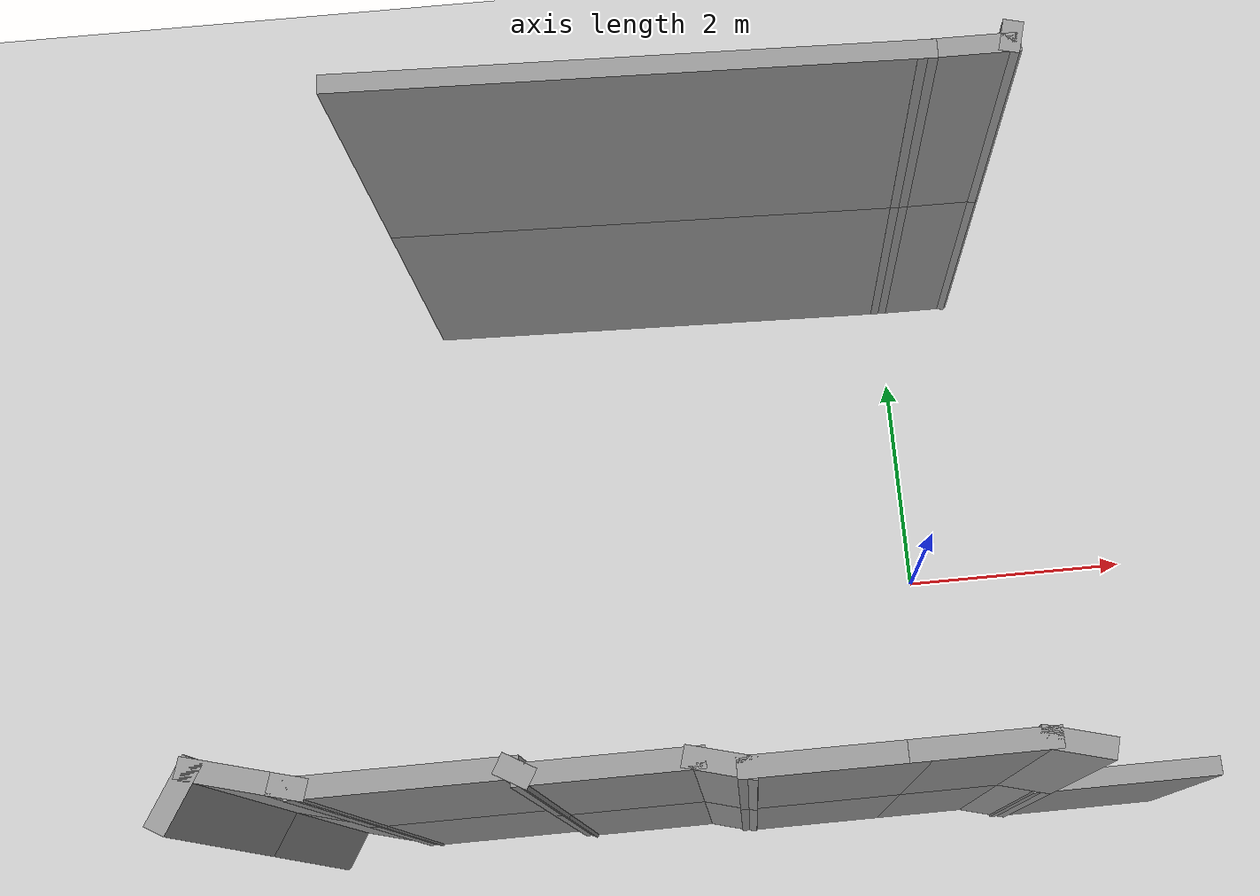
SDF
<sdf version="1.7">
 <world name="default">
  <model name="ground_plane">
   <static>1</static>
   <link name="link">
    <collision name="collision">
     <geometry><plane><normal>0 0 1</normal><size>100 100</size></plane></geometry>
     <surface>
      <contact><collide_bitmask>65535</collide_bitmask></contact>
      <friction><ode><mu>100</mu><mu2>50</mu2></ode></friction>
     </surface>
    </collision>
    <visual name="visual">
     <cast_shadows>0</cast_shadows>
     <geometry><plane><normal>0 0 1</normal><size>100 100</size></plane></geometry>
     <material>
      <script><uri>file://media/materials/scripts/gazebo.material</uri><name>Gazebo/Grey</name></script>
     </material>
    </visual>
   </link>
  </model>
  <model name="EnvDC01">
   <link name="Wall_107">
    <pose>-5.93616 9.1413 0 0 0 -1.8326</pose>
    <visual name="Wall_107_Visual">
     <pose>0 0 1.25 0 -0 0</pose>
     <geometry><box><size>0.25 0.15 2.5</size></box></geometry>
     <material>
      <script><uri>file://media/materials/scripts/gazebo.material</uri><name>Gazebo/Grey</name></script>
      <ambient>1 1 1 1</ambient>
      <shader type="pixel"/>
     </material>
     <meta><layer>0</layer></meta>
    </visual>
    <collision name="Wall_107_Collision">
     <pose>0 0 1.25 0 -0 0</pose>
     <geometry><box><size>0.25 0.15 2.5</size></box></geometry>
     <surface>
      <friction>
       <ode><mu>1</mu><mu2>1</mu2><fdir1>0 0 0</fdir1><slip1>0</slip1><slip2>0</slip2></ode>
       <torsional>
        <coefficient>1</coefficient>
        <patch_radius>0</patch_radius>
        <surface_radius>0</surface_radius>
        <use_patch_radius>1</use_patch_radius>
        <ode><slip>0</slip></ode>
       </torsional>
      </friction>
      <bounce><restitution_coefficient>0</restitution_coefficient><threshold>1e+06</threshold></bounce>
      <contact>
       <collide_without_contact>0</collide_without_contact>
       <collide_without_contact_bitmask>1</collide_without_contact_bitmask>
       <collide_bitmask>1</collide_bitmask>
       <ode>
        <soft_cfm>0</soft_cfm>
        <soft_erp>0.2</soft_erp>
        <kp>1e+13</kp>
        <kd>1</kd>
        <max_vel>0.01</max_vel>
        <min_depth>0</min_depth>
       </ode>
       <bullet>
        <split_impulse>1</split_impulse>
        <split_impulse_penetration_threshold>-0.01</split_impulse_penetration_threshold>
        <soft_cfm>0</soft_cfm>
        <soft_erp>0.2</soft_erp>
        <kp>1e+13</kp>
        <kd>1</kd>
       </bullet>
      </contact>
     </surface>
    </collision>
   </link>
   <link name="Wall_108">
    <pose>-6.24911 9.09509 0 0 -0 3.13464</pose>
    <visual name="Wall_108_Visual">
     <pose>0 0 1.25 0 -0 0</pose>
     <geometry><box><size>0.75 0.15 2.5</size></box></geometry>
     <material>
      <script><uri>file://media/materials/scripts/gazebo.material</uri><name>Gazebo/Grey</name></script>
      <ambient>1 1 1 1</ambient>
      <shader type="pixel"/>
     </material>
     <meta><layer>0</layer></meta>
    </visual>
    <collision name="Wall_108_Collision">
     <pose>0 0 1.25 0 -0 0</pose>
     <geometry><box><size>0.75 0.15 2.5</size></box></geometry>
     <surface>
      <friction>
       <ode><mu>1</mu><mu2>1</mu2><fdir1>0 0 0</fdir1><slip1>0</slip1><slip2>0</slip2></ode>
       <torsional>
        <coefficient>1</coefficient>
        <patch_radius>0</patch_radius>
        <surface_radius>0</surface_radius>
        <use_patch_radius>1</use_patch_radius>
        <ode><slip>0</slip></ode>
       </torsional>
      </friction>
      <bounce><restitution_coefficient>0</restitution_coefficient><threshold>1e+06</threshold></bounce>
      <contact>
       <collide_without_contact>0</collide_without_contact>
       <collide_without_contact_bitmask>1</collide_without_contact_bitmask>
       <collide_bitmask>1</collide_bitmask>
       <ode>
        <soft_cfm>0</soft_cfm>
        <soft_erp>0.2</soft_erp>
        <kp>1e+13</kp>
        <kd>1</kd>
        <max_vel>0.01</max_vel>
        <min_depth>0</min_depth>
       </ode>
       <bullet>
        <split_impulse>1</split_impulse>
        <split_impulse_penetration_threshold>-0.01</split_impulse_penetration_threshold>
        <soft_cfm>0</soft_cfm>
        <soft_erp>0.2</soft_erp>
        <kp>1e+13</kp>
        <kd>1</kd>
       </bullet>
      </contact>
     </surface>
    </collision>
   </link>
   <link name="Wall_111">
    <pose>-8.68398 9.16284 0 0 -0 3.11085</pose>
    <visual name="Wall_111_Visual">
     <pose>0 0 1.25 0 -0 0</pose>
     <geometry><box><size>4.42177 0.15 2.5</size></box></geometry>
     <material>
      <script><uri>file://media/materials/scripts/gazebo.material</uri><name>Gazebo/Grey</name></script>
      <ambient>1 1 1 1</ambient>
      <shader type="pixel"/>
     </material>
     <meta><layer>0</layer></meta>
    </visual>
    <collision name="Wall_111_Collision">
     <pose>0 0 1.25 0 -0 0</pose>
     <geometry><box><size>4.42177 0.15 2.5</size></box></geometry>
     <surface>
      <friction>
       <ode><mu>1</mu><mu2>1</mu2><fdir1>0 0 0</fdir1><slip1>0</slip1><slip2>0</slip2></ode>
       <torsional>
        <coefficient>1</coefficient>
        <patch_radius>0</patch_radius>
        <surface_radius>0</surface_radius>
        <use_patch_radius>1</use_patch_radius>
        <ode><slip>0</slip></ode>
       </torsional>
      </friction>
      <bounce><restitution_coefficient>0</restitution_coefficient><threshold>1e+06</threshold></bounce>
      <contact>
       <collide_without_contact>0</collide_without_contact>
       <collide_without_contact_bitmask>1</collide_without_contact_bitmask>
       <collide_bitmask>1</collide_bitmask>
       <ode>
        <soft_cfm>0</soft_cfm>
        <soft_erp>0.2</soft_erp>
        <kp>1e+13</kp>
        <kd>1</kd>
        <max_vel>0.01</max_vel>
        <min_depth>0</min_depth>
       </ode>
       <bullet>
        <split_impulse>1</split_impulse>
        <split_impulse_penetration_threshold>-0.01</split_impulse_penetration_threshold>
        <soft_cfm>0</soft_cfm>
        <soft_erp>0.2</soft_erp>
        <kp>1e+13</kp>
        <kd>1</kd>
       </bullet>
      </contact>
     </surface>
    </collision>
   </link>
   <link name="Wall_167">
    <pose>-5.33682 4.06947 0 0 -0 3.14159</pose>
    <visual name="Wall_167_Visual">
     <pose>0 0 1.25 0 -0 0</pose>
     <geometry><box><size>1.5 0.15 2.5</size></box></geometry>
     <material>
      <script><uri>file://media/materials/scripts/gazebo.material</uri><name>Gazebo/Grey</name></script>
      <ambient>1 1 1 1</ambient>
      <shader type="pixel"/>
     </material>
     <meta><layer>0</layer></meta>
    </visual>
    <collision name="Wall_167_Collision">
     <pose>0 0 1.25 0 -0 0</pose>
     <geometry><box><size>1.5 0.15 2.5</size></box></geometry>
     <surface>
      <friction>
       <ode><mu>1</mu><mu2>1</mu2><fdir1>0 0 0</fdir1><slip1>0</slip1><slip2>0</slip2></ode>
       <torsional>
        <coefficient>1</coefficient>
        <patch_radius>0</patch_radius>
        <surface_radius>0</surface_radius>
        <use_patch_radius>1</use_patch_radius>
        <ode><slip>0</slip></ode>
       </torsional>
      </friction>
      <bounce><restitution_coefficient>0</restitution_coefficient><threshold>1e+06</threshold></bounce>
      <contact>
       <collide_without_contact>0</collide_without_contact>
       <collide_without_contact_bitmask>1</collide_without_contact_bitmask>
       <collide_bitmask>1</collide_bitmask>
       <ode>
        <soft_cfm>0</soft_cfm>
        <soft_erp>0.2</soft_erp>
        <kp>1e+13</kp>
        <kd>1</kd>
        <max_vel>0.01</max_vel>
        <min_depth>0</min_depth>
       </ode>
       <bullet>
        <split_impulse>1</split_impulse>
        <split_impulse_penetration_threshold>-0.01</split_impulse_penetration_threshold>
        <soft_cfm>0</soft_cfm>
        <soft_erp>0.2</soft_erp>
        <kp>1e+13</kp>
        <kd>1</kd>
       </bullet>
      </contact>
     </surface>
    </collision>
   </link>
   <link name="Wall_168">
    <pose>-6.18085 4.11477 0 0 -0 2.87979</pose>
    <visual name="Wall_168_Visual">
     <pose>0 0 1.25 0 -0 0</pose>
     <geometry><box><size>0.5 0.15 2.5</size></box></geometry>
     <material>
      <script><uri>file://media/materials/scripts/gazebo.material</uri><name>Gazebo/Grey</name></script>
      <ambient>1 1 1 1</ambient>
      <shader type="pixel"/>
     </material>
     <meta><layer>0</layer></meta>
    </visual>
    <collision name="Wall_168_Collision">
     <pose>0 0 1.25 0 -0 0</pose>
     <geometry><box><size>0.5 0.15 2.5</size></box></geometry>
     <surface>
      <friction>
       <ode><mu>1</mu><mu2>1</mu2><fdir1>0 0 0</fdir1><slip1>0</slip1><slip2>0</slip2></ode>
       <torsional>
        <coefficient>1</coefficient>
        <patch_radius>0</patch_radius>
        <surface_radius>0</surface_radius>
        <use_patch_radius>1</use_patch_radius>
        <ode><slip>0</slip></ode>
       </torsional>
      </friction>
      <bounce><restitution_coefficient>0</restitution_coefficient><threshold>1e+06</threshold></bounce>
      <contact>
       <collide_without_contact>0</collide_without_contact>
       <collide_without_contact_bitmask>1</collide_without_contact_bitmask>
       <collide_bitmask>1</collide_bitmask>
       <ode>
        <soft_cfm>0</soft_cfm>
        <soft_erp>0.2</soft_erp>
        <kp>1e+13</kp>
        <kd>1</kd>
        <max_vel>0.01</max_vel>
        <min_depth>0</min_depth>
       </ode>
       <bullet>
        <split_impulse>1</split_impulse>
        <split_impulse_penetration_threshold>-0.01</split_impulse_penetration_threshold>
        <soft_cfm>0</soft_cfm>
        <soft_erp>0.2</soft_erp>
        <kp>1e+13</kp>
        <kd>1</kd>
       </bullet>
      </contact>
     </surface>
    </collision>
   </link>
   <link name="Wall_169">
    <pose>-6.77489 4.16006 0 0 -0 3.14159</pose>
    <visual name="Wall_169_Visual">
     <pose>0 0 1.25 0 -0 0</pose>
     <geometry><box><size>1 0.15 2.5</size></box></geometry>
     <material>
      <script><uri>file://media/materials/scripts/gazebo.material</uri><name>Gazebo/Grey</name></script>
      <ambient>1 1 1 1</ambient>
      <shader type="pixel"/>
     </material>
     <meta><layer>0</layer></meta>
    </visual>
    <collision name="Wall_169_Collision">
     <pose>0 0 1.25 0 -0 0</pose>
     <geometry><box><size>1 0.15 2.5</size></box></geometry>
     <surface>
      <friction>
       <ode><mu>1</mu><mu2>1</mu2><fdir1>0 0 0</fdir1><slip1>0</slip1><slip2>0</slip2></ode>
       <torsional>
        <coefficient>1</coefficient>
        <patch_radius>0</patch_radius>
        <surface_radius>0</surface_radius>
        <use_patch_radius>1</use_patch_radius>
        <ode><slip>0</slip></ode>
       </torsional>
      </friction>
      <bounce><restitution_coefficient>0</restitution_coefficient><threshold>1e+06</threshold></bounce>
      <contact>
       <collide_without_contact>0</collide_without_contact>
       <collide_without_contact_bitmask>1</collide_without_contact_bitmask>
       <collide_bitmask>1</collide_bitmask>
       <ode>
        <soft_cfm>0</soft_cfm>
        <soft_erp>0.2</soft_erp>
        <kp>1e+13</kp>
        <kd>1</kd>
        <max_vel>0.01</max_vel>
        <min_depth>0</min_depth>
       </ode>
       <bullet>
        <split_impulse>1</split_impulse>
        <split_impulse_penetration_threshold>-0.01</split_impulse_penetration_threshold>
        <soft_cfm>0</soft_cfm>
        <soft_erp>0.2</soft_erp>
        <kp>1e+13</kp>
        <kd>1</kd>
       </bullet>
      </contact>
     </surface>
    </collision>
   </link>
   <link name="Wall_170">
    <pose>-7.74989 4.16006 0 0 -0 3.14159</pose>
    <visual name="Wall_170_Visual">
     <pose>0 0 1.25 0 -0 0</pose>
     <geometry><box><size>1.25 0.15 2.5</size></box></geometry>
     <material>
      <script><uri>file://media/materials/scripts/gazebo.material</uri><name>Gazebo/Grey</name></script>
      <ambient>1 1 1 1</ambient>
      <shader type="pixel"/>
     </material>
     <meta><layer>0</layer></meta>
    </visual>
    <collision name="Wall_170_Collision">
     <pose>0 0 1.25 0 -0 0</pose>
     <geometry><box><size>1.25 0.15 2.5</size></box></geometry>
     <surface>
      <friction>
       <ode><mu>1</mu><mu2>1</mu2><fdir1>0 0 0</fdir1><slip1>0</slip1><slip2>0</slip2></ode>
       <torsional>
        <coefficient>1</coefficient>
        <patch_radius>0</patch_radius>
        <surface_radius>0</surface_radius>
        <use_patch_radius>1</use_patch_radius>
        <ode><slip>0</slip></ode>
       </torsional>
      </friction>
      <bounce><restitution_coefficient>0</restitution_coefficient><threshold>1e+06</threshold></bounce>
      <contact>
       <collide_without_contact>0</collide_without_contact>
       <collide_without_contact_bitmask>1</collide_without_contact_bitmask>
       <collide_bitmask>1</collide_bitmask>
       <ode>
        <soft_cfm>0</soft_cfm>
        <soft_erp>0.2</soft_erp>
        <kp>1e+13</kp>
        <kd>1</kd>
        <max_vel>0.01</max_vel>
        <min_depth>0</min_depth>
       </ode>
       <bullet>
        <split_impulse>1</split_impulse>
        <split_impulse_penetration_threshold>-0.01</split_impulse_penetration_threshold>
        <soft_cfm>0</soft_cfm>
        <soft_erp>0.2</soft_erp>
        <kp>1e+13</kp>
        <kd>1</kd>
       </bullet>
      </contact>
     </surface>
    </collision>
   </link>
   <link name="Wall_172">
    <pose>-8.46893 4.20535 0 0 -0 2.87979</pose>
    <visual name="Wall_172_Visual">
     <pose>0 0 1.25 0 -0 0</pose>
     <geometry><box><size>0.5 0.15 2.5</size></box></geometry>
     <material>
      <script><uri>file://media/materials/scripts/gazebo.material</uri><name>Gazebo/Grey</name></script>
      <ambient>1 1 1 1</ambient>
      <shader type="pixel"/>
     </material>
     <meta><layer>0</layer></meta>
    </visual>
    <collision name="Wall_172_Collision">
     <pose>0 0 1.25 0 -0 0</pose>
     <geometry><box><size>0.5 0.15 2.5</size></box></geometry>
     <surface>
      <friction>
       <ode><mu>1</mu><mu2>1</mu2><fdir1>0 0 0</fdir1><slip1>0</slip1><slip2>0</slip2></ode>
       <torsional>
        <coefficient>1</coefficient>
        <patch_radius>0</patch_radius>
        <surface_radius>0</surface_radius>
        <use_patch_radius>1</use_patch_radius>
        <ode><slip>0</slip></ode>
       </torsional>
      </friction>
      <bounce><restitution_coefficient>0</restitution_coefficient><threshold>1e+06</threshold></bounce>
      <contact>
       <collide_without_contact>0</collide_without_contact>
       <collide_without_contact_bitmask>1</collide_without_contact_bitmask>
       <collide_bitmask>1</collide_bitmask>
       <ode>
        <soft_cfm>0</soft_cfm>
        <soft_erp>0.2</soft_erp>
        <kp>1e+13</kp>
        <kd>1</kd>
        <max_vel>0.01</max_vel>
        <min_depth>0</min_depth>
       </ode>
       <bullet>
        <split_impulse>1</split_impulse>
        <split_impulse_penetration_threshold>-0.01</split_impulse_penetration_threshold>
        <soft_cfm>0</soft_cfm>
        <soft_erp>0.2</soft_erp>
        <kp>1e+13</kp>
        <kd>1</kd>
       </bullet>
      </contact>
     </surface>
    </collision>
   </link>
   <link name="Wall_173">
    <pose>-9.18796 4.25064 0 0 -0 3.14159</pose>
    <visual name="Wall_173_Visual">
     <pose>0 0 1.25 0 -0 0</pose>
     <geometry><box><size>1.25 0.15 2.5</size></box></geometry>
     <material>
      <script><uri>file://media/materials/scripts/gazebo.material</uri><name>Gazebo/Grey</name></script>
      <ambient>1 1 1 1</ambient>
      <shader type="pixel"/>
     </material>
     <meta><layer>0</layer></meta>
    </visual>
    <collision name="Wall_173_Collision">
     <pose>0 0 1.25 0 -0 0</pose>
     <geometry><box><size>1.25 0.15 2.5</size></box></geometry>
     <surface>
      <friction>
       <ode><mu>1</mu><mu2>1</mu2><fdir1>0 0 0</fdir1><slip1>0</slip1><slip2>0</slip2></ode>
       <torsional>
        <coefficient>1</coefficient>
        <patch_radius>0</patch_radius>
        <surface_radius>0</surface_radius>
        <use_patch_radius>1</use_patch_radius>
        <ode><slip>0</slip></ode>
       </torsional>
      </friction>
      <bounce><restitution_coefficient>0</restitution_coefficient><threshold>1e+06</threshold></bounce>
      <contact>
       <collide_without_contact>0</collide_without_contact>
       <collide_without_contact_bitmask>1</collide_without_contact_bitmask>
       <collide_bitmask>1</collide_bitmask>
       <ode>
        <soft_cfm>0</soft_cfm>
        <soft_erp>0.2</soft_erp>
        <kp>1e+13</kp>
        <kd>1</kd>
        <max_vel>0.01</max_vel>
        <min_depth>0</min_depth>
       </ode>
       <bullet>
        <split_impulse>1</split_impulse>
        <split_impulse_penetration_threshold>-0.01</split_impulse_penetration_threshold>
        <soft_cfm>0</soft_cfm>
        <soft_erp>0.2</soft_erp>
        <kp>1e+13</kp>
        <kd>1</kd>
       </bullet>
      </contact>
     </surface>
    </collision>
   </link>
   <link name="Wall_174">
    <pose>-9.78126 4.27564 0 0 -0 2.61799</pose>
    <visual name="Wall_174_Visual">
     <pose>0 0 1.25 0 -0 0</pose>
     <geometry><box><size>0.25 0.15 2.5</size></box></geometry>
     <material>
      <script><uri>file://media/materials/scripts/gazebo.material</uri><name>Gazebo/Grey</name></script>
      <ambient>1 1 1 1</ambient>
      <shader type="pixel"/>
     </material>
     <meta><layer>0</layer></meta>
    </visual>
    <collision name="Wall_174_Collision">
     <pose>0 0 1.25 0 -0 0</pose>
     <geometry><box><size>0.25 0.15 2.5</size></box></geometry>
     <surface>
      <friction>
       <ode><mu>1</mu><mu2>1</mu2><fdir1>0 0 0</fdir1><slip1>0</slip1><slip2>0</slip2></ode>
       <torsional>
        <coefficient>1</coefficient>
        <patch_radius>0</patch_radius>
        <surface_radius>0</surface_radius>
        <use_patch_radius>1</use_patch_radius>
        <ode><slip>0</slip></ode>
       </torsional>
      </friction>
      <bounce><restitution_coefficient>0</restitution_coefficient><threshold>1e+06</threshold></bounce>
      <contact>
       <collide_without_contact>0</collide_without_contact>
       <collide_without_contact_bitmask>1</collide_without_contact_bitmask>
       <collide_bitmask>1</collide_bitmask>
       <ode>
        <soft_cfm>0</soft_cfm>
        <soft_erp>0.2</soft_erp>
        <kp>1e+13</kp>
        <kd>1</kd>
        <max_vel>0.01</max_vel>
        <min_depth>0</min_depth>
       </ode>
       <bullet>
        <split_impulse>1</split_impulse>
        <split_impulse_penetration_threshold>-0.01</split_impulse_penetration_threshold>
        <soft_cfm>0</soft_cfm>
        <soft_erp>0.2</soft_erp>
        <kp>1e+13</kp>
        <kd>1</kd>
       </bullet>
      </contact>
     </surface>
    </collision>
   </link>
   <link name="Wall_175">
    <pose>-10.4996 4.30065 0 0 -0 3.14159</pose>
    <visual name="Wall_175_Visual">
     <pose>0 0 1.25 0 -0 0</pose>
     <geometry><box><size>1.5 0.15 2.5</size></box></geometry>
     <material>
      <script><uri>file://media/materials/scripts/gazebo.material</uri><name>Gazebo/Grey</name></script>
      <ambient>1 1 1 1</ambient>
      <shader type="pixel"/>
     </material>
     <meta><layer>0</layer></meta>
    </visual>
    <collision name="Wall_175_Collision">
     <pose>0 0 1.25 0 -0 0</pose>
     <geometry><box><size>1.5 0.15 2.5</size></box></geometry>
     <surface>
      <friction>
       <ode><mu>1</mu><mu2>1</mu2><fdir1>0 0 0</fdir1><slip1>0</slip1><slip2>0</slip2></ode>
       <torsional>
        <coefficient>1</coefficient>
        <patch_radius>0</patch_radius>
        <surface_radius>0</surface_radius>
        <use_patch_radius>1</use_patch_radius>
        <ode><slip>0</slip></ode>
       </torsional>
      </friction>
      <bounce><restitution_coefficient>0</restitution_coefficient><threshold>1e+06</threshold></bounce>
      <contact>
       <collide_without_contact>0</collide_without_contact>
       <collide_without_contact_bitmask>1</collide_without_contact_bitmask>
       <collide_bitmask>1</collide_bitmask>
       <ode>
        <soft_cfm>0</soft_cfm>
        <soft_erp>0.2</soft_erp>
        <kp>1e+13</kp>
        <kd>1</kd>
        <max_vel>0.01</max_vel>
        <min_depth>0</min_depth>
       </ode>
       <bullet>
        <split_impulse>1</split_impulse>
        <split_impulse_penetration_threshold>-0.01</split_impulse_penetration_threshold>
        <soft_cfm>0</soft_cfm>
        <soft_erp>0.2</soft_erp>
        <kp>1e+13</kp>
        <kd>1</kd>
       </bullet>
      </contact>
     </surface>
    </collision>
   </link>
   <link name="Wall_180">
    <pose>-11.2229 4.31359 0 0 -0 2.87979</pose>
    <visual name="Wall_180_Visual">
     <pose>0 0 1.25 0 -0 0</pose>
     <geometry><box><size>0.25 0.15 2.5</size></box></geometry>
     <material>
      <script><uri>file://media/materials/scripts/gazebo.material</uri><name>Gazebo/Grey</name></script>
      <ambient>1 1 1 1</ambient>
      <shader type="pixel"/>
     </material>
     <meta><layer>0</layer></meta>
    </visual>
    <collision name="Wall_180_Collision">
     <pose>0 0 1.25 0 -0 0</pose>
     <geometry><box><size>0.25 0.15 2.5</size></box></geometry>
     <surface>
      <friction>
       <ode><mu>1</mu><mu2>1</mu2><fdir1>0 0 0</fdir1><slip1>0</slip1><slip2>0</slip2></ode>
       <torsional>
        <coefficient>1</coefficient>
        <patch_radius>0</patch_radius>
        <surface_radius>0</surface_radius>
        <use_patch_radius>1</use_patch_radius>
        <ode><slip>0</slip></ode>
       </torsional>
      </friction>
      <bounce><restitution_coefficient>0</restitution_coefficient><threshold>1e+06</threshold></bounce>
      <contact>
       <collide_without_contact>0</collide_without_contact>
       <collide_without_contact_bitmask>1</collide_without_contact_bitmask>
       <collide_bitmask>1</collide_bitmask>
       <ode>
        <soft_cfm>0</soft_cfm>
        <soft_erp>0.2</soft_erp>
        <kp>1e+13</kp>
        <kd>1</kd>
        <max_vel>0.01</max_vel>
        <min_depth>0</min_depth>
       </ode>
       <bullet>
        <split_impulse>1</split_impulse>
        <split_impulse_penetration_threshold>-0.01</split_impulse_penetration_threshold>
        <soft_cfm>0</soft_cfm>
        <soft_erp>0.2</soft_erp>
        <kp>1e+13</kp>
        <kd>1</kd>
       </bullet>
      </contact>
     </surface>
    </collision>
   </link>
   <link name="Wall_181">
    <pose>-11.5609 4.40417 0 0 -0 2.87979</pose>
    <visual name="Wall_181_Visual">
     <pose>0 0 1.25 0 -0 0</pose>
     <geometry><box><size>0.75 0.15 2.5</size></box></geometry>
     <material>
      <script><uri>file://media/materials/scripts/gazebo.material</uri><name>Gazebo/Grey</name></script>
      <ambient>1 1 1 1</ambient>
      <shader type="pixel"/>
     </material>
     <meta><layer>0</layer></meta>
    </visual>
    <collision name="Wall_181_Collision">
     <pose>0 0 1.25 0 -0 0</pose>
     <geometry><box><size>0.75 0.15 2.5</size></box></geometry>
     <surface>
      <friction>
       <ode><mu>1</mu><mu2>1</mu2><fdir1>0 0 0</fdir1><slip1>0</slip1><slip2>0</slip2></ode>
       <torsional>
        <coefficient>1</coefficient>
        <patch_radius>0</patch_radius>
        <surface_radius>0</surface_radius>
        <use_patch_radius>1</use_patch_radius>
        <ode><slip>0</slip></ode>
       </torsional>
      </friction>
      <bounce><restitution_coefficient>0</restitution_coefficient><threshold>1e+06</threshold></bounce>
      <contact>
       <collide_without_contact>0</collide_without_contact>
       <collide_without_contact_bitmask>1</collide_without_contact_bitmask>
       <collide_bitmask>1</collide_bitmask>
       <ode>
        <soft_cfm>0</soft_cfm>
        <soft_erp>0.2</soft_erp>
        <kp>1e+13</kp>
        <kd>1</kd>
        <max_vel>0.01</max_vel>
        <min_depth>0</min_depth>
       </ode>
       <bullet>
        <split_impulse>1</split_impulse>
        <split_impulse_penetration_threshold>-0.01</split_impulse_penetration_threshold>
        <soft_cfm>0</soft_cfm>
        <soft_erp>0.2</soft_erp>
        <kp>1e+13</kp>
        <kd>1</kd>
       </bullet>
      </contact>
     </surface>
    </collision>
   </link>
   <link name="Wall_187">
    <pose>-11.9382 4.33026 0 0 0 -2.0944</pose>
    <visual name="Wall_187_Visual">
     <pose>0 0 1.25 0 -0 0</pose>
     <geometry><box><size>0.5 0.15 2.5</size></box></geometry>
     <material>
      <script><uri>file://media/materials/scripts/gazebo.material</uri><name>Gazebo/Grey</name></script>
      <ambient>1 1 1 1</ambient>
      <shader type="pixel"/>
     </material>
     <meta><layer>0</layer></meta>
    </visual>
    <collision name="Wall_187_Collision">
     <pose>0 0 1.25 0 -0 0</pose>
     <geometry><box><size>0.5 0.15 2.5</size></box></geometry>
     <surface>
      <friction>
       <ode><mu>1</mu><mu2>1</mu2><fdir1>0 0 0</fdir1><slip1>0</slip1><slip2>0</slip2></ode>
       <torsional>
        <coefficient>1</coefficient>
        <patch_radius>0</patch_radius>
        <surface_radius>0</surface_radius>
        <use_patch_radius>1</use_patch_radius>
        <ode><slip>0</slip></ode>
       </torsional>
      </friction>
      <bounce><restitution_coefficient>0</restitution_coefficient><threshold>1e+06</threshold></bounce>
      <contact>
       <collide_without_contact>0</collide_without_contact>
       <collide_without_contact_bitmask>1</collide_without_contact_bitmask>
       <collide_bitmask>1</collide_bitmask>
       <ode>
        <soft_cfm>0</soft_cfm>
        <soft_erp>0.2</soft_erp>
        <kp>1e+13</kp>
        <kd>1</kd>
        <max_vel>0.01</max_vel>
        <min_depth>0</min_depth>
       </ode>
       <bullet>
        <split_impulse>1</split_impulse>
        <split_impulse_penetration_threshold>-0.01</split_impulse_penetration_threshold>
        <soft_cfm>0</soft_cfm>
        <soft_erp>0.2</soft_erp>
        <kp>1e+13</kp>
        <kd>1</kd>
       </bullet>
      </contact>
     </surface>
    </collision>
   </link>
   <link name="Wall_314">
    <pose>-5.93616 9.1413 2.5 0 0 -1.8326</pose>
    <visual name="Wall_314_Visual">
     <pose>0 0 1.25 0 -0 0</pose>
     <geometry><box><size>0.25 0.15 2.5</size></box></geometry>
     <material>
      <script><uri>file://media/materials/scripts/gazebo.material</uri><name>Gazebo/Grey</name></script>
      <ambient>1 1 1 1</ambient>
      <shader type="pixel"/>
     </material>
     <meta><layer>1</layer></meta>
    </visual>
    <collision name="Wall_314_Collision">
     <pose>0 0 1.25 0 -0 0</pose>
     <geometry><box><size>0.25 0.15 2.5</size></box></geometry>
     <surface>
      <friction>
       <ode><mu>1</mu><mu2>1</mu2><fdir1>0 0 0</fdir1><slip1>0</slip1><slip2>0</slip2></ode>
       <torsional>
        <coefficient>1</coefficient>
        <patch_radius>0</patch_radius>
        <surface_radius>0</surface_radius>
        <use_patch_radius>1</use_patch_radius>
        <ode><slip>0</slip></ode>
       </torsional>
      </friction>
      <bounce><restitution_coefficient>0</restitution_coefficient><threshold>1e+06</threshold></bounce>
      <contact>
       <collide_without_contact>0</collide_without_contact>
       <collide_without_contact_bitmask>1</collide_without_contact_bitmask>
       <collide_bitmask>1</collide_bitmask>
       <ode>
        <soft_cfm>0</soft_cfm>
        <soft_erp>0.2</soft_erp>
        <kp>1e+13</kp>
        <kd>1</kd>
        <max_vel>0.01</max_vel>
        <min_depth>0</min_depth>
       </ode>
       <bullet>
        <split_impulse>1</split_impulse>
        <split_impulse_penetration_threshold>-0.01</split_impulse_penetration_threshold>
        <soft_cfm>0</soft_cfm>
        <soft_erp>0.2</soft_erp>
        <kp>1e+13</kp>
        <kd>1</kd>
       </bullet>
      </contact>
     </surface>
    </collision>
   </link>
   <link name="Wall_315">
    <pose>-6.24911 9.09509 2.5 0 -0 3.13464</pose>
    <visual name="Wall_315_Visual">
     <pose>0 0 1.25 0 -0 0</pose>
     <geometry><box><size>0.750014 0.15 2.5</size></box></geometry>
     <material>
      <script><uri>file://media/materials/scripts/gazebo.material</uri><name>Gazebo/Grey</name></script>
      <ambient>1 1 1 1</ambient>
      <shader type="pixel"/>
     </material>
     <meta><layer>1</layer></meta>
    </visual>
    <collision name="Wall_315_Collision">
     <pose>0 0 1.25 0 -0 0</pose>
     <geometry><box><size>0.750014 0.15 2.5</size></box></geometry>
     <surface>
      <friction>
       <ode><mu>1</mu><mu2>1</mu2><fdir1>0 0 0</fdir1><slip1>0</slip1><slip2>0</slip2></ode>
       <torsional>
        <coefficient>1</coefficient>
        <patch_radius>0</patch_radius>
        <surface_radius>0</surface_radius>
        <use_patch_radius>1</use_patch_radius>
        <ode><slip>0</slip></ode>
       </torsional>
      </friction>
      <bounce><restitution_coefficient>0</restitution_coefficient><threshold>1e+06</threshold></bounce>
      <contact>
       <collide_without_contact>0</collide_without_contact>
       <collide_without_contact_bitmask>1</collide_without_contact_bitmask>
       <collide_bitmask>1</collide_bitmask>
       <ode>
        <soft_cfm>0</soft_cfm>
        <soft_erp>0.2</soft_erp>
        <kp>1e+13</kp>
        <kd>1</kd>
        <max_vel>0.01</max_vel>
        <min_depth>0</min_depth>
       </ode>
       <bullet>
        <split_impulse>1</split_impulse>
        <split_impulse_penetration_threshold>-0.01</split_impulse_penetration_threshold>
        <soft_cfm>0</soft_cfm>
        <soft_erp>0.2</soft_erp>
        <kp>1e+13</kp>
        <kd>1</kd>
       </bullet>
      </contact>
     </surface>
    </collision>
   </link>
   <link name="Wall_316">
    <pose>-8.68398 9.16284 2.5 0 -0 3.11085</pose>
    <visual name="Wall_316_Visual">
     <pose>0 0 1.25 0 -0 0</pose>
     <geometry><box><size>4.42177 0.15 2.5</size></box></geometry>
     <material>
      <script><uri>file://media/materials/scripts/gazebo.material</uri><name>Gazebo/Grey</name></script>
      <ambient>1 1 1 1</ambient>
      <shader type="pixel"/>
     </material>
     <meta><layer>1</layer></meta>
    </visual>
    <collision name="Wall_316_Collision">
     <pose>0 0 1.25 0 -0 0</pose>
     <geometry><box><size>4.42177 0.15 2.5</size></box></geometry>
     <surface>
      <friction>
       <ode><mu>1</mu><mu2>1</mu2><fdir1>0 0 0</fdir1><slip1>0</slip1><slip2>0</slip2></ode>
       <torsional>
        <coefficient>1</coefficient>
        <patch_radius>0</patch_radius>
        <surface_radius>0</surface_radius>
        <use_patch_radius>1</use_patch_radius>
        <ode><slip>0</slip></ode>
       </torsional>
      </friction>
      <bounce><restitution_coefficient>0</restitution_coefficient><threshold>1e+06</threshold></bounce>
      <contact>
       <collide_without_contact>0</collide_without_contact>
       <collide_without_contact_bitmask>1</collide_without_contact_bitmask>
       <collide_bitmask>1</collide_bitmask>
       <ode>
        <soft_cfm>0</soft_cfm>
        <soft_erp>0.2</soft_erp>
        <kp>1e+13</kp>
        <kd>1</kd>
        <max_vel>0.01</max_vel>
        <min_depth>0</min_depth>
       </ode>
       <bullet>
        <split_impulse>1</split_impulse>
        <split_impulse_penetration_threshold>-0.01</split_impulse_penetration_threshold>
        <soft_cfm>0</soft_cfm>
        <soft_erp>0.2</soft_erp>
        <kp>1e+13</kp>
        <kd>1</kd>
       </bullet>
      </contact>
     </surface>
    </collision>
   </link>
   <link name="Wall_356">
    <pose>-6.18085 4.11477 2.5 0 -0 2.87979</pose>
    <visual name="Wall_356_Visual">
     <pose>0 0 1.25 0 -0 0</pose>
     <geometry><box><size>0.5 0.15 2.5</size></box></geometry>
     <material>
      <script><uri>file://media/materials/scripts/gazebo.material</uri><name>Gazebo/Grey</name></script>
      <ambient>1 1 1 1</ambient>
      <shader type="pixel"/>
     </material>
     <meta><layer>1</layer></meta>
    </visual>
    <collision name="Wall_356_Collision">
     <pose>0 0 1.25 0 -0 0</pose>
     <geometry><box><size>0.5 0.15 2.5</size></box></geometry>
     <surface>
      <friction>
       <ode><mu>1</mu><mu2>1</mu2><fdir1>0 0 0</fdir1><slip1>0</slip1><slip2>0</slip2></ode>
       <torsional>
        <coefficient>1</coefficient>
        <patch_radius>0</patch_radius>
        <surface_radius>0</surface_radius>
        <use_patch_radius>1</use_patch_radius>
        <ode><slip>0</slip></ode>
       </torsional>
      </friction>
      <bounce><restitution_coefficient>0</restitution_coefficient><threshold>1e+06</threshold></bounce>
      <contact>
       <collide_without_contact>0</collide_without_contact>
       <collide_without_contact_bitmask>1</collide_without_contact_bitmask>
       <collide_bitmask>1</collide_bitmask>
       <ode>
        <soft_cfm>0</soft_cfm>
        <soft_erp>0.2</soft_erp>
        <kp>1e+13</kp>
        <kd>1</kd>
        <max_vel>0.01</max_vel>
        <min_depth>0</min_depth>
       </ode>
       <bullet>
        <split_impulse>1</split_impulse>
        <split_impulse_penetration_threshold>-0.01</split_impulse_penetration_threshold>
        <soft_cfm>0</soft_cfm>
        <soft_erp>0.2</soft_erp>
        <kp>1e+13</kp>
        <kd>1</kd>
       </bullet>
      </contact>
     </surface>
    </collision>
   </link>
   <link name="Wall_357">
    <pose>-6.77489 4.16006 2.5 0 -0 3.14159</pose>
    <visual name="Wall_357_Visual">
     <pose>0 0 1.25 0 -0 0</pose>
     <geometry><box><size>1 0.15 2.5</size></box></geometry>
     <material>
      <script><uri>file://media/materials/scripts/gazebo.material</uri><name>Gazebo/Grey</name></script>
      <ambient>1 1 1 1</ambient>
      <shader type="pixel"/>
     </material>
     <meta><layer>1</layer></meta>
    </visual>
    <collision name="Wall_357_Collision">
     <pose>0 0 1.25 0 -0 0</pose>
     <geometry><box><size>1 0.15 2.5</size></box></geometry>
     <surface>
      <friction>
       <ode><mu>1</mu><mu2>1</mu2><fdir1>0 0 0</fdir1><slip1>0</slip1><slip2>0</slip2></ode>
       <torsional>
        <coefficient>1</coefficient>
        <patch_radius>0</patch_radius>
        <surface_radius>0</surface_radius>
        <use_patch_radius>1</use_patch_radius>
        <ode><slip>0</slip></ode>
       </torsional>
      </friction>
      <bounce><restitution_coefficient>0</restitution_coefficient><threshold>1e+06</threshold></bounce>
      <contact>
       <collide_without_contact>0</collide_without_contact>
       <collide_without_contact_bitmask>1</collide_without_contact_bitmask>
       <collide_bitmask>1</collide_bitmask>
       <ode>
        <soft_cfm>0</soft_cfm>
        <soft_erp>0.2</soft_erp>
        <kp>1e+13</kp>
        <kd>1</kd>
        <max_vel>0.01</max_vel>
        <min_depth>0</min_depth>
       </ode>
       <bullet>
        <split_impulse>1</split_impulse>
        <split_impulse_penetration_threshold>-0.01</split_impulse_penetration_threshold>
        <soft_cfm>0</soft_cfm>
        <soft_erp>0.2</soft_erp>
        <kp>1e+13</kp>
        <kd>1</kd>
       </bullet>
      </contact>
     </surface>
    </collision>
   </link>
   <link name="Wall_358">
    <pose>-7.74989 4.16006 2.5 0 -0 3.14159</pose>
    <visual name="Wall_358_Visual">
     <pose>0 0 1.25 0 -0 0</pose>
     <geometry><box><size>1.25 0.15 2.5</size></box></geometry>
     <material>
      <script><uri>file://media/materials/scripts/gazebo.material</uri><name>Gazebo/Grey</name></script>
      <ambient>1 1 1 1</ambient>
      <shader type="pixel"/>
     </material>
     <meta><layer>1</layer></meta>
    </visual>
    <collision name="Wall_358_Collision">
     <pose>0 0 1.25 0 -0 0</pose>
     <geometry><box><size>1.25 0.15 2.5</size></box></geometry>
     <surface>
      <friction>
       <ode><mu>1</mu><mu2>1</mu2><fdir1>0 0 0</fdir1><slip1>0</slip1><slip2>0</slip2></ode>
       <torsional>
        <coefficient>1</coefficient>
        <patch_radius>0</patch_radius>
        <surface_radius>0</surface_radius>
        <use_patch_radius>1</use_patch_radius>
        <ode><slip>0</slip></ode>
       </torsional>
      </friction>
      <bounce><restitution_coefficient>0</restitution_coefficient><threshold>1e+06</threshold></bounce>
      <contact>
       <collide_without_contact>0</collide_without_contact>
       <collide_without_contact_bitmask>1</collide_without_contact_bitmask>
       <collide_bitmask>1</collide_bitmask>
       <ode>
        <soft_cfm>0</soft_cfm>
        <soft_erp>0.2</soft_erp>
        <kp>1e+13</kp>
        <kd>1</kd>
        <max_vel>0.01</max_vel>
        <min_depth>0</min_depth>
       </ode>
       <bullet>
        <split_impulse>1</split_impulse>
        <split_impulse_penetration_threshold>-0.01</split_impulse_penetration_threshold>
        <soft_cfm>0</soft_cfm>
        <soft_erp>0.2</soft_erp>
        <kp>1e+13</kp>
        <kd>1</kd>
       </bullet>
      </contact>
     </surface>
    </collision>
   </link>
   <link name="Wall_359">
    <pose>-8.46893 4.20535 2.5 0 -0 2.87979</pose>
    <visual name="Wall_359_Visual">
     <pose>0 0 1.25 0 -0 0</pose>
     <geometry><box><size>0.5 0.15 2.5</size></box></geometry>
     <material>
      <script><uri>file://media/materials/scripts/gazebo.material</uri><name>Gazebo/Grey</name></script>
      <ambient>1 1 1 1</ambient>
      <shader type="pixel"/>
     </material>
     <meta><layer>1</layer></meta>
    </visual>
    <collision name="Wall_359_Collision">
     <pose>0 0 1.25 0 -0 0</pose>
     <geometry><box><size>0.5 0.15 2.5</size></box></geometry>
     <surface>
      <friction>
       <ode><mu>1</mu><mu2>1</mu2><fdir1>0 0 0</fdir1><slip1>0</slip1><slip2>0</slip2></ode>
       <torsional>
        <coefficient>1</coefficient>
        <patch_radius>0</patch_radius>
        <surface_radius>0</surface_radius>
        <use_patch_radius>1</use_patch_radius>
        <ode><slip>0</slip></ode>
       </torsional>
      </friction>
      <bounce><restitution_coefficient>0</restitution_coefficient><threshold>1e+06</threshold></bounce>
      <contact>
       <collide_without_contact>0</collide_without_contact>
       <collide_without_contact_bitmask>1</collide_without_contact_bitmask>
       <collide_bitmask>1</collide_bitmask>
       <ode>
        <soft_cfm>0</soft_cfm>
        <soft_erp>0.2</soft_erp>
        <kp>1e+13</kp>
        <kd>1</kd>
        <max_vel>0.01</max_vel>
        <min_depth>0</min_depth>
       </ode>
       <bullet>
        <split_impulse>1</split_impulse>
        <split_impulse_penetration_threshold>-0.01</split_impulse_penetration_threshold>
        <soft_cfm>0</soft_cfm>
        <soft_erp>0.2</soft_erp>
        <kp>1e+13</kp>
        <kd>1</kd>
       </bullet>
      </contact>
     </surface>
    </collision>
   </link>
   <link name="Wall_360">
    <pose>-9.18796 4.25064 2.5 0 -0 3.14159</pose>
    <visual name="Wall_360_Visual">
     <pose>0 0 1.25 0 -0 0</pose>
     <geometry><box><size>1.25 0.15 2.5</size></box></geometry>
     <material>
      <script><uri>file://media/materials/scripts/gazebo.material</uri><name>Gazebo/Grey</name></script>
      <ambient>1 1 1 1</ambient>
      <shader type="pixel"/>
     </material>
     <meta><layer>1</layer></meta>
    </visual>
    <collision name="Wall_360_Collision">
     <pose>0 0 1.25 0 -0 0</pose>
     <geometry><box><size>1.25 0.15 2.5</size></box></geometry>
     <surface>
      <friction>
       <ode><mu>1</mu><mu2>1</mu2><fdir1>0 0 0</fdir1><slip1>0</slip1><slip2>0</slip2></ode>
       <torsional>
        <coefficient>1</coefficient>
        <patch_radius>0</patch_radius>
        <surface_radius>0</surface_radius>
        <use_patch_radius>1</use_patch_radius>
        <ode><slip>0</slip></ode>
       </torsional>
      </friction>
      <bounce><restitution_coefficient>0</restitution_coefficient><threshold>1e+06</threshold></bounce>
      <contact>
       <collide_without_contact>0</collide_without_contact>
       <collide_without_contact_bitmask>1</collide_without_contact_bitmask>
       <collide_bitmask>1</collide_bitmask>
       <ode>
        <soft_cfm>0</soft_cfm>
        <soft_erp>0.2</soft_erp>
        <kp>1e+13</kp>
        <kd>1</kd>
        <max_vel>0.01</max_vel>
        <min_depth>0</min_depth>
       </ode>
       <bullet>
        <split_impulse>1</split_impulse>
        <split_impulse_penetration_threshold>-0.01</split_impulse_penetration_threshold>
        <soft_cfm>0</soft_cfm>
        <soft_erp>0.2</soft_erp>
        <kp>1e+13</kp>
        <kd>1</kd>
       </bullet>
      </contact>
     </surface>
    </collision>
   </link>
   <link name="Wall_361">
    <pose>-9.78126 4.27564 2.5 0 -0 2.61799</pose>
    <visual name="Wall_361_Visual">
     <pose>0 0 1.25 0 -0 0</pose>
     <geometry><box><size>0.25 0.15 2.5</size></box></geometry>
     <material>
      <script><uri>file://media/materials/scripts/gazebo.material</uri><name>Gazebo/Grey</name></script>
      <ambient>1 1 1 1</ambient>
      <shader type="pixel"/>
     </material>
     <meta><layer>1</layer></meta>
    </visual>
    <collision name="Wall_361_Collision">
     <pose>0 0 1.25 0 -0 0</pose>
     <geometry><box><size>0.25 0.15 2.5</size></box></geometry>
     <surface>
      <friction>
       <ode><mu>1</mu><mu2>1</mu2><fdir1>0 0 0</fdir1><slip1>0</slip1><slip2>0</slip2></ode>
       <torsional>
        <coefficient>1</coefficient>
        <patch_radius>0</patch_radius>
        <surface_radius>0</surface_radius>
        <use_patch_radius>1</use_patch_radius>
        <ode><slip>0</slip></ode>
       </torsional>
      </friction>
      <bounce><restitution_coefficient>0</restitution_coefficient><threshold>1e+06</threshold></bounce>
      <contact>
       <collide_without_contact>0</collide_without_contact>
       <collide_without_contact_bitmask>1</collide_without_contact_bitmask>
       <collide_bitmask>1</collide_bitmask>
       <ode>
        <soft_cfm>0</soft_cfm>
        <soft_erp>0.2</soft_erp>
        <kp>1e+13</kp>
        <kd>1</kd>
        <max_vel>0.01</max_vel>
        <min_depth>0</min_depth>
       </ode>
       <bullet>
        <split_impulse>1</split_impulse>
        <split_impulse_penetration_threshold>-0.01</split_impulse_penetration_threshold>
        <soft_cfm>0</soft_cfm>
        <soft_erp>0.2</soft_erp>
        <kp>1e+13</kp>
        <kd>1</kd>
       </bullet>
      </contact>
     </surface>
    </collision>
   </link>
   <link name="Wall_362">
    <pose>-10.4996 4.30065 2.5 0 -0 3.14159</pose>
    <visual name="Wall_362_Visual">
     <pose>0 0 1.25 0 -0 0</pose>
     <geometry><box><size>1.5 0.15 2.5</size></box></geometry>
     <material>
      <script><uri>file://media/materials/scripts/gazebo.material</uri><name>Gazebo/Grey</name></script>
      <ambient>1 1 1 1</ambient>
      <shader type="pixel"/>
     </material>
     <meta><layer>1</layer></meta>
    </visual>
    <collision name="Wall_362_Collision">
     <pose>0 0 1.25 0 -0 0</pose>
     <geometry><box><size>1.5 0.15 2.5</size></box></geometry>
     <surface>
      <friction>
       <ode><mu>1</mu><mu2>1</mu2><fdir1>0 0 0</fdir1><slip1>0</slip1><slip2>0</slip2></ode>
       <torsional>
        <coefficient>1</coefficient>
        <patch_radius>0</patch_radius>
        <surface_radius>0</surface_radius>
        <use_patch_radius>1</use_patch_radius>
        <ode><slip>0</slip></ode>
       </torsional>
      </friction>
      <bounce><restitution_coefficient>0</restitution_coefficient><threshold>1e+06</threshold></bounce>
      <contact>
       <collide_without_contact>0</collide_without_contact>
       <collide_without_contact_bitmask>1</collide_without_contact_bitmask>
       <collide_bitmask>1</collide_bitmask>
       <ode>
        <soft_cfm>0</soft_cfm>
        <soft_erp>0.2</soft_erp>
        <kp>1e+13</kp>
        <kd>1</kd>
        <max_vel>0.01</max_vel>
        <min_depth>0</min_depth>
       </ode>
       <bullet>
        <split_impulse>1</split_impulse>
        <split_impulse_penetration_threshold>-0.01</split_impulse_penetration_threshold>
        <soft_cfm>0</soft_cfm>
        <soft_erp>0.2</soft_erp>
        <kp>1e+13</kp>
        <kd>1</kd>
       </bullet>
      </contact>
     </surface>
    </collision>
   </link>
   <link name="Wall_363">
    <pose>-11.2229 4.31359 2.5 0 -0 2.87979</pose>
    <visual name="Wall_363_Visual">
     <pose>0 0 1.25 0 -0 0</pose>
     <geometry><box><size>0.25 0.15 2.5</size></box></geometry>
     <material>
      <script><uri>file://media/materials/scripts/gazebo.material</uri><name>Gazebo/Grey</name></script>
      <ambient>1 1 1 1</ambient>
      <shader type="pixel"/>
     </material>
     <meta><layer>1</layer></meta>
    </visual>
    <collision name="Wall_363_Collision">
     <pose>0 0 1.25 0 -0 0</pose>
     <geometry><box><size>0.25 0.15 2.5</size></box></geometry>
     <surface>
      <friction>
       <ode><mu>1</mu><mu2>1</mu2><fdir1>0 0 0</fdir1><slip1>0</slip1><slip2>0</slip2></ode>
       <torsional>
        <coefficient>1</coefficient>
        <patch_radius>0</patch_radius>
        <surface_radius>0</surface_radius>
        <use_patch_radius>1</use_patch_radius>
        <ode><slip>0</slip></ode>
       </torsional>
      </friction>
      <bounce><restitution_coefficient>0</restitution_coefficient><threshold>1e+06</threshold></bounce>
      <contact>
       <collide_without_contact>0</collide_without_contact>
       <collide_without_contact_bitmask>1</collide_without_contact_bitmask>
       <collide_bitmask>1</collide_bitmask>
       <ode>
        <soft_cfm>0</soft_cfm>
        <soft_erp>0.2</soft_erp>
        <kp>1e+13</kp>
        <kd>1</kd>
        <max_vel>0.01</max_vel>
        <min_depth>0</min_depth>
       </ode>
       <bullet>
        <split_impulse>1</split_impulse>
        <split_impulse_penetration_threshold>-0.01</split_impulse_penetration_threshold>
        <soft_cfm>0</soft_cfm>
        <soft_erp>0.2</soft_erp>
        <kp>1e+13</kp>
        <kd>1</kd>
       </bullet>
      </contact>
     </surface>
    </collision>
   </link>
   <link name="Wall_364">
    <pose>-11.5609 4.40417 2.5 0 -0 2.87979</pose>
    <visual name="Wall_364_Visual">
     <pose>0 0 1.25 0 -0 0</pose>
     <geometry><box><size>0.75 0.15 2.5</size></box></geometry>
     <material>
      <script><uri>file://media/materials/scripts/gazebo.material</uri><name>Gazebo/Grey</name></script>
      <ambient>1 1 1 1</ambient>
      <shader type="pixel"/>
     </material>
     <meta><layer>1</layer></meta>
    </visual>
    <collision name="Wall_364_Collision">
     <pose>0 0 1.25 0 -0 0</pose>
     <geometry><box><size>0.75 0.15 2.5</size></box></geometry>
     <surface>
      <friction>
       <ode><mu>1</mu><mu2>1</mu2><fdir1>0 0 0</fdir1><slip1>0</slip1><slip2>0</slip2></ode>
       <torsional>
        <coefficient>1</coefficient>
        <patch_radius>0</patch_radius>
        <surface_radius>0</surface_radius>
        <use_patch_radius>1</use_patch_radius>
        <ode><slip>0</slip></ode>
       </torsional>
      </friction>
      <bounce><restitution_coefficient>0</restitution_coefficient><threshold>1e+06</threshold></bounce>
      <contact>
       <collide_without_contact>0</collide_without_contact>
       <collide_without_contact_bitmask>1</collide_without_contact_bitmask>
       <collide_bitmask>1</collide_bitmask>
       <ode>
        <soft_cfm>0</soft_cfm>
        <soft_erp>0.2</soft_erp>
        <kp>1e+13</kp>
        <kd>1</kd>
        <max_vel>0.01</max_vel>
        <min_depth>0</min_depth>
       </ode>
       <bullet>
        <split_impulse>1</split_impulse>
        <split_impulse_penetration_threshold>-0.01</split_impulse_penetration_threshold>
        <soft_cfm>0</soft_cfm>
        <soft_erp>0.2</soft_erp>
        <kp>1e+13</kp>
        <kd>1</kd>
       </bullet>
      </contact>
     </surface>
    </collision>
   </link>
   <link name="Wall_365">
    <pose>-11.9382 4.33026 2.5 0 0 -2.0944</pose>
    <visual name="Wall_365_Visual">
     <pose>0 0 1.25 0 -0 0</pose>
     <geometry><box><size>0.5 0.15 2.5</size></box></geometry>
     <material>
      <script><uri>file://media/materials/scripts/gazebo.material</uri><name>Gazebo/Grey</name></script>
      <ambient>1 1 1 1</ambient>
      <shader type="pixel"/>
     </material>
     <meta><layer>1</layer></meta>
    </visual>
    <collision name="Wall_365_Collision">
     <pose>0 0 1.25 0 -0 0</pose>
     <geometry><box><size>0.5 0.15 2.5</size></box></geometry>
     <surface>
      <friction>
       <ode><mu>1</mu><mu2>1</mu2><fdir1>0 0 0</fdir1><slip1>0</slip1><slip2>0</slip2></ode>
       <torsional>
        <coefficient>1</coefficient>
        <patch_radius>0</patch_radius>
        <surface_radius>0</surface_radius>
        <use_patch_radius>1</use_patch_radius>
        <ode><slip>0</slip></ode>
       </torsional>
      </friction>
      <bounce><restitution_coefficient>0</restitution_coefficient><threshold>1e+06</threshold></bounce>
      <contact>
       <collide_without_contact>0</collide_without_contact>
       <collide_without_contact_bitmask>1</collide_without_contact_bitmask>
       <collide_bitmask>1</collide_bitmask>
       <ode>
        <soft_cfm>0</soft_cfm>
        <soft_erp>0.2</soft_erp>
        <kp>1e+13</kp>
        <kd>1</kd>
        <max_vel>0.01</max_vel>
        <min_depth>0</min_depth>
       </ode>
       <bullet>
        <split_impulse>1</split_impulse>
        <split_impulse_penetration_threshold>-0.01</split_impulse_penetration_threshold>
        <soft_cfm>0</soft_cfm>
        <soft_erp>0.2</soft_erp>
        <kp>1e+13</kp>
        <kd>1</kd>
       </bullet>
      </contact>
     </surface>
    </collision>
   </link>
   <static>1</static>
   <pose>6.55365 -6.2466 0 0 -0 0</pose>
  </model>
 </world>
</sdf>
